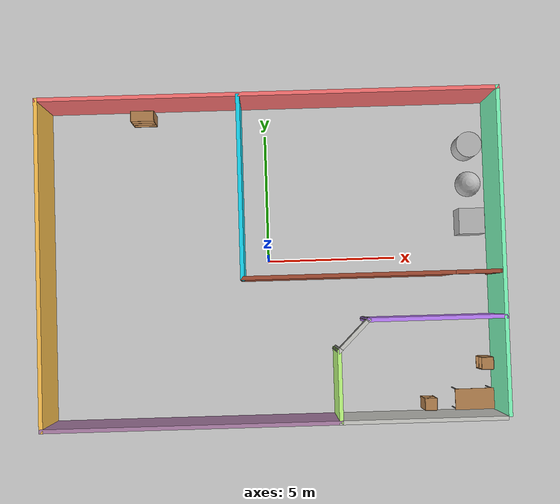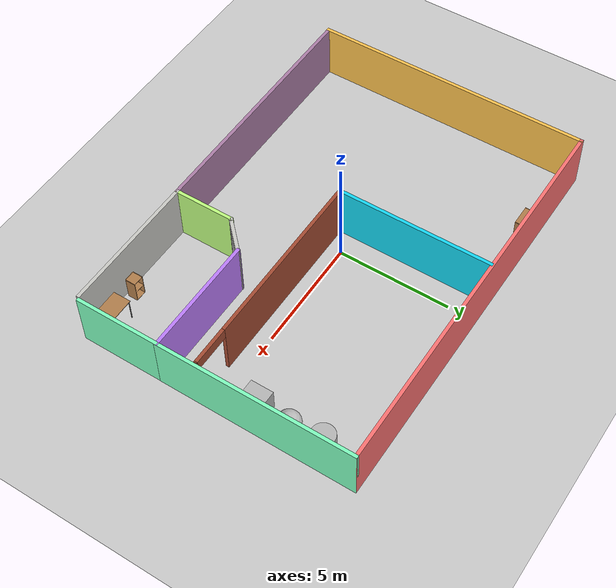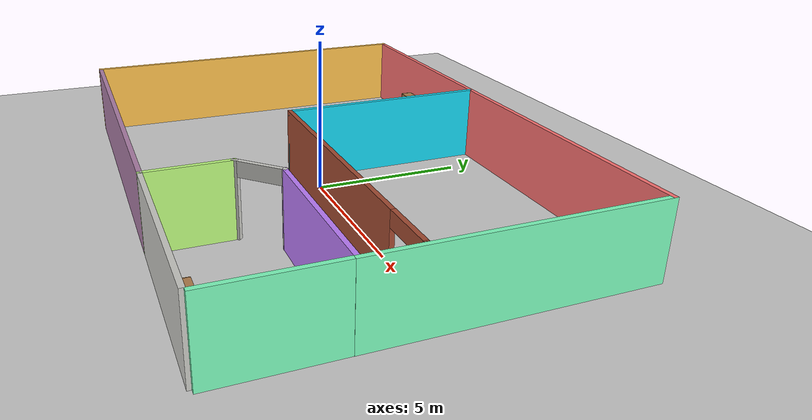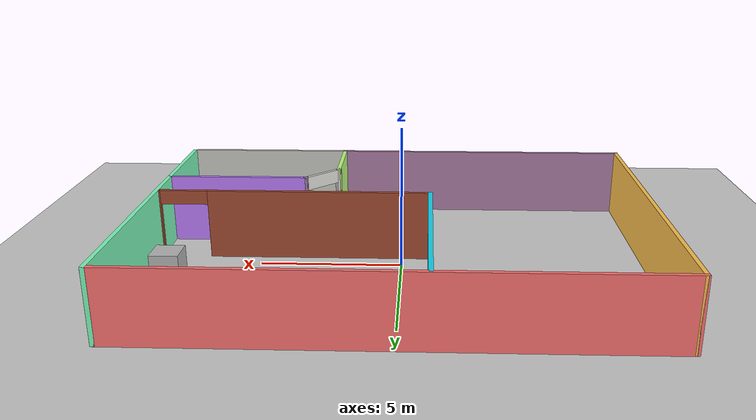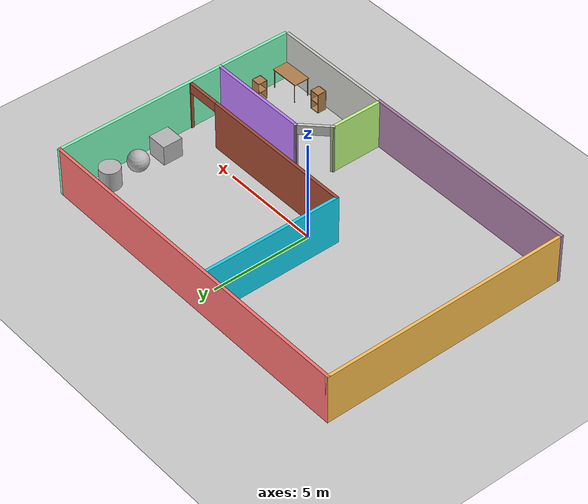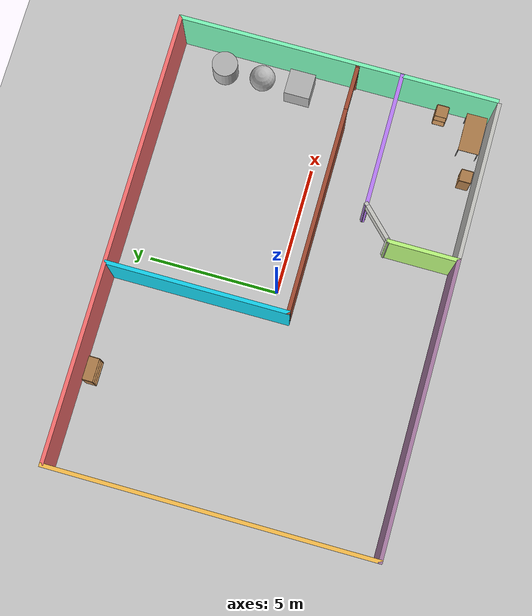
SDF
<sdf version="1.7">
 <world name="default">
  <light name="sun" type="directional">
   <pose>0 0 10 0 -0 0</pose>
   <diffuse>0.8 0.8 0.8 1</diffuse>
   <specular>0.2 0.2 0.2 1</specular>
   <attenuation>
    <range>1000</range>
    <constant>0.9</constant>
    <linear>0.01</linear>
    <quadratic>0.001</quadratic>
   </attenuation>
   <direction>-0.5 0.1 -0.9</direction>
   <spot><inner_angle>0</inner_angle><outer_angle>0</outer_angle><falloff>0</falloff></spot>
  </light>
  <model name="ground_plane">
   <static>1</static>
   <link name="link">
    <collision name="collision">
     <geometry><plane><normal>0 0 1</normal><size>100 100</size></plane></geometry>
     <surface><friction><ode><mu>100</mu><mu2>50</mu2></ode></friction></surface>
    </collision>
    <visual name="visual">
     <cast_shadows>0</cast_shadows>
     <geometry><plane><normal>0 0 1</normal><size>100 100</size></plane></geometry>
     <material>
      <script><uri>file://media/materials/scripts/gazebo.material</uri><name>Gazebo/Grey</name></script>
     </material>
    </visual>
   </link>
  </model>
  <gravity>0 0 -9.8</gravity>
  <magnetic_field>6e-06 2.3e-05 -4.2e-05</magnetic_field>
  <atmosphere type="adiabatic"/>
  <physics type="ode">
   <max_step_size>0.001</max_step_size>
   <real_time_factor>1</real_time_factor>
   <real_time_update_rate>1000</real_time_update_rate>
  </physics>
  <scene><ambient>0.4 0.4 0.4 1</ambient><background>0.7 0.7 0.7 1</background><shadows>1</shadows></scene>
  <spherical_coordinates>
   <surface_model>EARTH_WGS84</surface_model>
   <latitude_deg>0</latitude_deg>
   <longitude_deg>0</longitude_deg>
   <elevation>0</elevation>
   <heading_deg>0</heading_deg>
  </spherical_coordinates>
  <model name="FloorPlan1BHK">
   <pose>0.093457 0.03718 0 0 -0 0</pose>
   <link name="Wall_0">
    <collision name="Wall_0_Collision">
     <geometry><box><size>17.5 0.15 2.5</size></box></geometry>
     <pose>0 0 1.25 0 -0 0</pose>
    </collision>
    <visual name="Wall_0_Visual">
     <pose>0 0 1.25 0 -0 0</pose>
     <geometry><box><size>17.5 0.15 2.5</size></box></geometry>
     <material>
      <script><uri>file://media/materials/scripts/gazebo.material</uri><name>Gazebo/Grey</name></script>
      <ambient>1 0.45 0.45 1</ambient>
     </material>
     <meta><layer>0</layer></meta>
    </visual>
    <pose>0 6.17506 0 0 -0 0</pose>
   </link>
   <link name="Wall_10">
    <collision name="Wall_10_Collision">
     <geometry><box><size>2.77214 0.15 2.5</size></box></geometry>
     <pose>0 0 1.25 0 -0 0</pose>
    </collision>
    <visual name="Wall_10_Visual">
     <pose>0 0 1.25 0 -0 0</pose>
     <geometry><box><size>2.77214 0.15 2.5</size></box></geometry>
     <material>
      <script><uri>file://media/materials/scripts/gazebo.material</uri><name>Gazebo/Grey</name></script>
      <ambient>0.75 1 0.5 1</ambient>
     </material>
     <meta><layer>0</layer></meta>
    </visual>
    <pose>2.42713 -4.86387 0 0 -0 1.56917</pose>
   </link>
   <link name="Wall_11">
    <pose>2.99494 -2.98712 0 0 -0 0.785398</pose>
    <visual name="Wall_11_Visual_0">
     <pose>-0.778435 0 1.25 0 -0 0</pose>
     <geometry><box><size>0.19313 0.15 2.5</size></box></geometry>
     <material>
      <script><uri>file://media/materials/scripts/gazebo.material</uri><name>Gazebo/CeilingTiled</name></script>
      <ambient>1 1 1 1</ambient>
     </material>
     <meta><layer>0</layer></meta>
    </visual>
    <collision name="Wall_11_Collision_0">
     <geometry><box><size>0.19313 0.15 2.5</size></box></geometry>
     <pose>-0.778435 0 1.25 0 -0 0</pose>
    </collision>
    <visual name="Wall_11_Visual_1">
     <pose>0.80968 0 1.25 0 -0 0</pose>
     <geometry><box><size>0.13064 0.15 2.5</size></box></geometry>
     <material>
      <script><uri>file://media/materials/scripts/gazebo.material</uri><name>Gazebo/CeilingTiled</name></script>
      <ambient>1 1 1 1</ambient>
     </material>
     <meta><layer>0</layer></meta>
    </visual>
    <collision name="Wall_11_Collision_1">
     <geometry><box><size>0.13064 0.15 2.5</size></box></geometry>
     <pose>0.80968 0 1.25 0 -0 0</pose>
    </collision>
    <visual name="Wall_11_Visual_2">
     <pose>0.031245 0 2.25 0 -0 0</pose>
     <geometry><box><size>1.42623 0.15 0.5</size></box></geometry>
     <material>
      <script><uri>file://media/materials/scripts/gazebo.material</uri><name>Gazebo/CeilingTiled</name></script>
      <ambient>1 1 1 1</ambient>
     </material>
     <meta><layer>0</layer></meta>
    </visual>
    <collision name="Wall_11_Collision_2">
     <geometry><box><size>1.42623 0.15 0.5</size></box></geometry>
     <pose>0.031245 0 2.25 0 -0 0</pose>
    </collision>
   </link>
   <link name="Wall_12">
    <collision name="Wall_12_Collision">
     <geometry><box><size>5.25 0.15 2.5</size></box></geometry>
     <pose>0 0 1.25 0 -0 0</pose>
    </collision>
    <visual name="Wall_12_Visual">
     <pose>0 0 1.25 0 -0 0</pose>
     <geometry><box><size>5.25 0.15 2.5</size></box></geometry>
     <material>
      <script><uri>file://media/materials/scripts/gazebo.material</uri><name>Gazebo/Grey</name></script>
      <ambient>0.75 0.5 1 1</ambient>
     </material>
     <meta><layer>0</layer></meta>
    </visual>
    <pose>6.11062 -2.42143 0 0 -0 0</pose>
   </link>
   <link name="Wall_14">
    <collision name="Wall_14_Collision">
     <geometry><box><size>11.25 0.15 2.5</size></box></geometry>
     <pose>0 0 1.25 0 -0 0</pose>
    </collision>
    <visual name="Wall_14_Visual">
     <pose>0 0 1.25 0 -0 0</pose>
     <geometry><box><size>11.25 0.15 2.5</size></box></geometry>
     <material>
      <script><uri>file://media/materials/scripts/gazebo.material</uri><name>Gazebo/Grey</name></script>
      <ambient>0.678431 0.498039 0.658824 1</ambient>
     </material>
     <meta><layer>0</layer></meta>
    </visual>
    <pose>-3.125 -6.17494 0 0 -0 3.14159</pose>
   </link>
   <link name="Wall_16">
    <collision name="Wall_16_Collision">
     <geometry><box><size>8.75 0.15 2.5</size></box></geometry>
     <pose>0 0 1.25 0 -0 0</pose>
    </collision>
    <visual name="Wall_16_Visual">
     <pose>0 0 1.25 0 -0 0</pose>
     <geometry><box><size>8.75 0.15 2.5</size></box></geometry>
     <material>
      <script><uri>file://media/materials/scripts/gazebo.material</uri><name>Gazebo/Grey</name></script>
      <ambient>0.5 1 0.75 1</ambient>
     </material>
     <meta><layer>0</layer></meta>
    </visual>
    <pose>8.675 1.87506 0 0 -0 -1.5708</pose>
   </link>
   <link name="Wall_25">
    <collision name="Wall_25_Collision">
     <geometry><box><size>3.75 0.15 2.5</size></box></geometry>
     <pose>0 0 1.25 0 -0 0</pose>
    </collision>
    <visual name="Wall_25_Visual">
     <pose>0 0 1.25 0 -0 0</pose>
     <geometry><box><size>3.75 0.15 2.5</size></box></geometry>
     <material>
      <script><uri>file://media/materials/scripts/gazebo.material</uri><name>Gazebo/Grey</name></script>
      <ambient>0.5 1 0.75 1</ambient>
     </material>
     <meta><layer>0</layer></meta>
    </visual>
    <pose>8.66896 -4.25988 0 0 -0 1.5708</pose>
   </link>
   <link name="Wall_27">
    <collision name="Wall_27_Collision">
     <geometry><box><size>6.25 0.15 2.5</size></box></geometry>
     <pose>0 0 1.25 0 -0 0</pose>
    </collision>
    <visual name="Wall_27_Visual">
     <pose>0 0 1.25 0 -0 0</pose>
     <geometry><box><size>6.25 0.15 2.5</size></box></geometry>
     <material>
      <script><uri>file://media/materials/scripts/gazebo.material</uri><name>Gazebo/CeilingTiled</name></script>
      <ambient>1 1 1 1</ambient>
     </material>
     <meta><layer>0</layer></meta>
    </visual>
    <pose>5.475 -6.17494 0 0 -0 0</pose>
   </link>
   <link name="Wall_5">
    <collision name="Wall_5_Collision">
     <geometry><box><size>12.5 0.15 2.5</size></box></geometry>
     <pose>0 0 1.25 0 -0 0</pose>
    </collision>
    <visual name="Wall_5_Visual">
     <pose>0 0 1.25 0 -0 0</pose>
     <geometry><box><size>12.5 0.15 2.5</size></box></geometry>
     <material>
      <script><uri>file://media/materials/scripts/gazebo.material</uri><name>Gazebo/Grey</name></script>
      <ambient>1 0.764706 0.305882 1</ambient>
     </material>
     <meta><layer>0</layer></meta>
    </visual>
    <pose>-8.675 6e-05 0 0 -0 1.5708</pose>
   </link>
   <link name="Wall_7">
    <collision name="Wall_7_Collision">
     <geometry><box><size>7 0.15 2.5</size></box></geometry>
     <pose>0 0 1.25 0 -0 0</pose>
    </collision>
    <visual name="Wall_7_Visual">
     <pose>0 0 1.25 0 -0 0</pose>
     <geometry><box><size>7 0.15 2.5</size></box></geometry>
     <material>
      <script><uri>file://media/materials/scripts/gazebo.material</uri><name>Gazebo/Grey</name></script>
      <ambient>0.0823529 0.85098 0.956863 1</ambient>
     </material>
     <meta><layer>0</layer></meta>
    </visual>
    <pose>-1.08862 2.68888 0 0 -0 -1.5708</pose>
   </link>
   <link name="Wall_8">
    <pose>3.71138 -0.73612 0 0 -0 0</pose>
    <visual name="Wall_8_Visual_0">
     <pose>-0.867842 0 1.25 0 -0 0</pose>
     <geometry><box><size>8.01432 0.15 2.5</size></box></geometry>
     <material>
      <script><uri>file://media/materials/scripts/gazebo.material</uri><name>Gazebo/Bricks</name></script>
      <ambient>1 1 1 1</ambient>
     </material>
     <meta><layer>0</layer></meta>
    </visual>
    <collision name="Wall_8_Collision_0">
     <geometry><box><size>8.01432 0.15 2.5</size></box></geometry>
     <pose>-0.867842 0 1.25 0 -0 0</pose>
    </collision>
    <visual name="Wall_8_Visual_1">
     <pose>4.84937 0 1.25 0 -0 0</pose>
     <geometry><box><size>0.051255 0.15 2.5</size></box></geometry>
     <material>
      <script><uri>file://media/materials/scripts/gazebo.material</uri><name>Gazebo/Bricks</name></script>
      <ambient>1 1 1 1</ambient>
     </material>
     <meta><layer>0</layer></meta>
    </visual>
    <collision name="Wall_8_Collision_1">
     <geometry><box><size>0.051255 0.15 2.5</size></box></geometry>
     <pose>4.84937 0 1.25 0 -0 0</pose>
    </collision>
    <visual name="Wall_8_Visual_2">
     <pose>3.98153 0 2.25 0 -0 0</pose>
     <geometry><box><size>1.68443 0.15 0.5</size></box></geometry>
     <material>
      <script><uri>file://media/materials/scripts/gazebo.material</uri><name>Gazebo/Bricks</name></script>
      <ambient>1 1 1 1</ambient>
     </material>
     <meta><layer>0</layer></meta>
    </visual>
    <collision name="Wall_8_Collision_2">
     <geometry><box><size>1.68443 0.15 0.5</size></box></geometry>
     <pose>3.98153 0 2.25 0 -0 0</pose>
    </collision>
   </link>
   <static>1</static>
  </model>
  <model name="bookshelf">
   <static>1</static>
   <link name="link">
    <inertial><mass>1</mass></inertial>
    <collision name="back">
     <pose>0 0.005 0.6 0 -0 0</pose>
     <geometry><box><size>0.9 0.01 1.2</size></box></geometry>
    </collision>
    <visual name="visual1">
     <pose>0 0.005 0.6 0 -0 0</pose>
     <geometry><box><size>0.9 0.01 1.2</size></box></geometry>
     <material>
      <script><uri>file://media/materials/scripts/gazebo.material</uri><name>Gazebo/Wood</name></script>
     </material>
    </visual>
    <collision name="left_side">
     <pose>0.45 -0.195 0.6 0 -0 0</pose>
     <geometry><box><size>0.02 0.4 1.2</size></box></geometry>
    </collision>
    <visual name="visual2">
     <pose>0.45 -0.195 0.6 0 -0 0</pose>
     <geometry><box><size>0.02 0.4 1.2</size></box></geometry>
     <material>
      <script><uri>file://media/materials/scripts/gazebo.material</uri><name>Gazebo/Wood</name></script>
     </material>
    </visual>
    <collision name="right_side">
     <pose>-0.45 -0.195 0.6 0 -0 0</pose>
     <geometry><box><size>0.02 0.4 1.2</size></box></geometry>
    </collision>
    <visual name="visual3">
     <pose>-0.45 -0.195 0.6 0 -0 0</pose>
     <geometry><box><size>0.02 0.4 1.2</size></box></geometry>
     <material>
      <script><uri>file://media/materials/scripts/gazebo.material</uri><name>Gazebo/Wood</name></script>
     </material>
    </visual>
    <collision name="bottom">
     <pose>0 -0.195 0.03 0 -0 0</pose>
     <geometry><box><size>0.88 0.4 0.06</size></box></geometry>
    </collision>
    <visual name="visual4">
     <pose>0 -0.195 0.03 0 -0 0</pose>
     <geometry><box><size>0.88 0.4 0.06</size></box></geometry>
     <material>
      <script><uri>file://media/materials/scripts/gazebo.material</uri><name>Gazebo/Wood</name></script>
     </material>
    </visual>
    <collision name="top">
     <pose>0 -0.195 1.19 0 -0 0</pose>
     <geometry><box><size>0.88 0.4 0.02</size></box></geometry>
    </collision>
    <visual name="visual5">
     <pose>0 -0.195 1.19 0 -0 0</pose>
     <geometry><box><size>0.88 0.4 0.02</size></box></geometry>
     <material>
      <script><uri>file://media/materials/scripts/gazebo.material</uri><name>Gazebo/Wood</name></script>
     </material>
    </visual>
    <collision name="low_shelf">
     <pose>0 -0.195 0.43 0 -0 0</pose>
     <geometry><box><size>0.88 0.4 0.02</size></box></geometry>
    </collision>
    <visual name="visual6">
     <pose>0 -0.195 0.43 0 -0 0</pose>
     <geometry><box><size>0.88 0.4 0.02</size></box></geometry>
     <material>
      <script><uri>file://media/materials/scripts/gazebo.material</uri><name>Gazebo/Wood</name></script>
     </material>
    </visual>
    <collision name="high_shelf">
     <pose>0 -0.195 0.8 0 -0 0</pose>
     <geometry><box><size>0.88 0.4 0.02</size></box></geometry>
    </collision>
    <visual name="visual7">
     <pose>0 -0.195 0.8 0 -0 0</pose>
     <geometry><box><size>0.88 0.4 0.02</size></box></geometry>
     <material>
      <script><uri>file://media/materials/scripts/gazebo.material</uri><name>Gazebo/Wood</name></script>
     </material>
    </visual>
   </link>
   <pose>-4.76074 5.95163 0 0 0 -0.000339</pose>
  </model>
  <model name="cabinet">
   <static>1</static>
   <link name="cabinet_bottom_plate">
    <inertial>
     <pose>0 0 -1 0 -0 0</pose>
     <inertia><ixx>2.05</ixx><ixy>0</ixy><ixz>0</ixz><iyy>2.05</iyy><iyz>0</iyz><izz>2.05</izz></inertia>
     <mass>25</mass>
    </inertial>
    <collision name="cabinet_bottom_plate_geom">
     <pose>0 0 0.01 0 -0 0</pose>
     <geometry><box><size>0.45 0.45 0.02</size></box></geometry>
    </collision>
    <visual name="cabinet_bottom_plate_geom_visual">
     <pose>0 0 0.01 0 -0 0</pose>
     <geometry><box><size>0.45 0.45 0.02</size></box></geometry>
     <material>
      <script><uri>file://media/materials/scripts/gazebo.material</uri><name>Gazebo/Wood</name></script>
     </material>
    </visual>
    <collision name="cabinet_bottom_plate_geom_cabinet_back_plate">
     <pose>0.235 0 0.51 0 -0 0</pose>
     <geometry><box><size>0.02 0.45 1.02</size></box></geometry>
    </collision>
    <visual name="cabinet_bottom_plate_geom_cabinet_back_plate_visual">
     <pose>0.235 0 0.51 0 -0 0</pose>
     <geometry><box><size>0.02 0.45 1.02</size></box></geometry>
     <material>
      <script><uri>file://media/materials/scripts/gazebo.material</uri><name>Gazebo/Wood</name></script>
     </material>
    </visual>
    <collision name="cabinet_bottom_plate_geom_cabinet_left_plate">
     <pose>0 0.235 0.51 0 -0 0</pose>
     <geometry><box><size>0.45 0.02 1.02</size></box></geometry>
    </collision>
    <visual name="cabinet_bottom_plate_geom_cabinet_left_plate_visual">
     <pose>0 0.235 0.51 0 -0 0</pose>
     <geometry><box><size>0.45 0.02 1.02</size></box></geometry>
     <material>
      <script><uri>file://media/materials/scripts/gazebo.material</uri><name>Gazebo/Wood</name></script>
     </material>
    </visual>
    <collision name="cabinet_bottom_plate_geom_cabinet_middle_plate">
     <pose>0 0 0.51 0 -0 0</pose>
     <geometry><box><size>0.45 0.45 0.02</size></box></geometry>
    </collision>
    <visual name="cabinet_bottom_plate_geom_cabinet_middle_plate_visual">
     <pose>0 0 0.51 0 -0 0</pose>
     <geometry><box><size>0.45 0.45 0.02</size></box></geometry>
     <material>
      <script><uri>file://media/materials/scripts/gazebo.material</uri><name>Gazebo/Wood</name></script>
     </material>
    </visual>
    <collision name="cabinet_bottom_plate_geom_cabinet_right_plate">
     <pose>0 -0.235 0.51 0 -0 0</pose>
     <geometry><box><size>0.45 0.02 1.02</size></box></geometry>
    </collision>
    <visual name="cabinet_bottom_plate_geom_cabinet_right_plate_visual">
     <pose>0 -0.235 0.51 0 -0 0</pose>
     <geometry><box><size>0.45 0.02 1.02</size></box></geometry>
     <material>
      <script><uri>file://media/materials/scripts/gazebo.material</uri><name>Gazebo/Wood</name></script>
     </material>
    </visual>
    <collision name="cabinet_bottom_plate_geom_cabinet_top_plate">
     <pose>0 0 1.01 0 -0 0</pose>
     <geometry><box><size>0.45 0.45 0.02</size></box></geometry>
    </collision>
    <visual name="cabinet_bottom_plate_geom_cabinet_top_plate_visual">
     <pose>0 0 1.01 0 -0 0</pose>
     <geometry><box><size>0.45 0.45 0.02</size></box></geometry>
     <material>
      <script><uri>file://media/materials/scripts/gazebo.material</uri><name>Gazebo/Wood</name></script>
     </material>
    </visual>
   </link>
   <pose>8.33694 -4.21954 0 0 -0 0</pose>
  </model>
  <model name="table">
   <static>1</static>
   <link name="link">
    <collision name="surface">
     <pose>0 0 1 0 -0 0</pose>
     <geometry><box><size>1.5 0.8 0.03</size></box></geometry>
     <surface><friction><ode><mu>0.6</mu><mu2>0.6</mu2></ode></friction></surface>
    </collision>
    <visual name="visual1">
     <pose>0 0 1 0 -0 0</pose>
     <geometry><box><size>1.5 0.8 0.03</size></box></geometry>
     <material>
      <script><uri>file://media/materials/scripts/gazebo.material</uri><name>Gazebo/Wood</name></script>
     </material>
    </visual>
    <collision name="front_left_leg">
     <pose>0.68 0.38 0.5 0 -0 0</pose>
     <geometry><cylinder><radius>0.02</radius><length>1</length></cylinder></geometry>
    </collision>
    <visual name="front_left_leg">
     <pose>0.68 0.38 0.5 0 -0 0</pose>
     <geometry><cylinder><radius>0.02</radius><length>1</length></cylinder></geometry>
     <material>
      <script><uri>file://media/materials/scripts/gazebo.material</uri><name>Gazebo/Grey</name></script>
     </material>
    </visual>
    <collision name="front_right_leg">
     <pose>0.68 -0.38 0.5 0 -0 0</pose>
     <geometry><cylinder><radius>0.02</radius><length>1</length></cylinder></geometry>
    </collision>
    <visual name="front_right_leg">
     <pose>0.68 -0.38 0.5 0 -0 0</pose>
     <geometry><cylinder><radius>0.02</radius><length>1</length></cylinder></geometry>
     <material>
      <script><uri>file://media/materials/scripts/gazebo.material</uri><name>Gazebo/Grey</name></script>
     </material>
    </visual>
    <collision name="back_right_leg">
     <pose>-0.68 -0.38 0.5 0 -0 0</pose>
     <geometry><cylinder><radius>0.02</radius><length>1</length></cylinder></geometry>
    </collision>
    <visual name="back_right_leg">
     <pose>-0.68 -0.38 0.5 0 -0 0</pose>
     <geometry><cylinder><radius>0.02</radius><length>1</length></cylinder></geometry>
     <material>
      <script><uri>file://media/materials/scripts/gazebo.material</uri><name>Gazebo/Grey</name></script>
     </material>
    </visual>
    <collision name="back_left_leg">
     <pose>-0.68 0.38 0.5 0 -0 0</pose>
     <geometry><cylinder><radius>0.02</radius><length>1</length></cylinder></geometry>
    </collision>
    <visual name="back_left_leg">
     <pose>-0.68 0.38 0.5 0 -0 0</pose>
     <geometry><cylinder><radius>0.02</radius><length>1</length></cylinder></geometry>
     <material>
      <script><uri>file://media/materials/scripts/gazebo.material</uri><name>Gazebo/Grey</name></script>
     </material>
    </visual>
   </link>
   <pose>7.78712 -5.56762 0 0 -0 0.006304</pose>
  </model>
  <model name="cabinet_0">
   <static>1</static>
   <link name="cabinet_bottom_plate">
    <inertial>
     <pose>0 0 -1 0 -0 0</pose>
     <inertia><ixx>2.05</ixx><ixy>0</ixy><ixz>0</ixz><iyy>2.05</iyy><iyz>0</iyz><izz>2.05</izz></inertia>
     <mass>25</mass>
    </inertial>
    <collision name="cabinet_bottom_plate_geom">
     <pose>0 0 0.01 0 -0 0</pose>
     <geometry><box><size>0.45 0.45 0.02</size></box></geometry>
    </collision>
    <visual name="cabinet_bottom_plate_geom_visual">
     <pose>0 0 0.01 0 -0 0</pose>
     <geometry><box><size>0.45 0.45 0.02</size></box></geometry>
     <material>
      <script><uri>file://media/materials/scripts/gazebo.material</uri><name>Gazebo/Wood</name></script>
     </material>
    </visual>
    <collision name="cabinet_bottom_plate_geom_cabinet_back_plate">
     <pose>0.235 0 0.51 0 -0 0</pose>
     <geometry><box><size>0.02 0.45 1.02</size></box></geometry>
    </collision>
    <visual name="cabinet_bottom_plate_geom_cabinet_back_plate_visual">
     <pose>0.235 0 0.51 0 -0 0</pose>
     <geometry><box><size>0.02 0.45 1.02</size></box></geometry>
     <material>
      <script><uri>file://media/materials/scripts/gazebo.material</uri><name>Gazebo/Wood</name></script>
     </material>
    </visual>
    <collision name="cabinet_bottom_plate_geom_cabinet_left_plate">
     <pose>0 0.235 0.51 0 -0 0</pose>
     <geometry><box><size>0.45 0.02 1.02</size></box></geometry>
    </collision>
    <visual name="cabinet_bottom_plate_geom_cabinet_left_plate_visual">
     <pose>0 0.235 0.51 0 -0 0</pose>
     <geometry><box><size>0.45 0.02 1.02</size></box></geometry>
     <material>
      <script><uri>file://media/materials/scripts/gazebo.material</uri><name>Gazebo/Wood</name></script>
     </material>
    </visual>
    <collision name="cabinet_bottom_plate_geom_cabinet_middle_plate">
     <pose>0 0 0.51 0 -0 0</pose>
     <geometry><box><size>0.45 0.45 0.02</size></box></geometry>
    </collision>
    <visual name="cabinet_bottom_plate_geom_cabinet_middle_plate_visual">
     <pose>0 0 0.51 0 -0 0</pose>
     <geometry><box><size>0.45 0.45 0.02</size></box></geometry>
     <material>
      <script><uri>file://media/materials/scripts/gazebo.material</uri><name>Gazebo/Wood</name></script>
     </material>
    </visual>
    <collision name="cabinet_bottom_plate_geom_cabinet_right_plate">
     <pose>0 -0.235 0.51 0 -0 0</pose>
     <geometry><box><size>0.45 0.02 1.02</size></box></geometry>
    </collision>
    <visual name="cabinet_bottom_plate_geom_cabinet_right_plate_visual">
     <pose>0 -0.235 0.51 0 -0 0</pose>
     <geometry><box><size>0.45 0.02 1.02</size></box></geometry>
     <material>
      <script><uri>file://media/materials/scripts/gazebo.material</uri><name>Gazebo/Wood</name></script>
     </material>
    </visual>
    <collision name="cabinet_bottom_plate_geom_cabinet_top_plate">
     <pose>0 0 1.01 0 -0 0</pose>
     <geometry><box><size>0.45 0.45 0.02</size></box></geometry>
    </collision>
    <visual name="cabinet_bottom_plate_geom_cabinet_top_plate_visual">
     <pose>0 0 1.01 0 -0 0</pose>
     <geometry><box><size>0.45 0.45 0.02</size></box></geometry>
     <material>
      <script><uri>file://media/materials/scripts/gazebo.material</uri><name>Gazebo/Wood</name></script>
     </material>
    </visual>
   </link>
   <pose>6.10203 -5.72614 0 0 0 -1.57276</pose>
  </model>
  <model name="textured_shapes">
   <pose>7.94749 2.81336 0.5 0 -0 0</pose>
   <link name="box">
    <pose>0 -1.5 0 0 -0 0</pose>
    <collision name="collision"><geometry><box><size>1 1 1</size></box></geometry></collision>
    <visual name="visual">
     <geometry><box><size>1 1 1</size></box></geometry>
     <material>
      <script>
       <uri>https://fuel.ignitionrobotics.org/1.0/openrobotics/models/textured shapes/2/files/materials/scripts</uri>
       <uri>https://fuel.ignitionrobotics.org/1.0/openrobotics/models/textured shapes/2/files/materials/textures</uri>
       <name>TexturedShape/Squares</name>
      </script>
     </material>
    </visual>
    <inertial>
     <inertia><ixx>1</ixx><ixy>0</ixy><ixz>0</ixz><iyy>1</iyy><iyz>0</iyz><izz>1</izz></inertia>
     <mass>1</mass>
    </inertial>
   </link>
   <link name="sphere">
    <collision name="collision"><geometry><sphere><radius>0.5</radius></sphere></geometry></collision>
    <visual name="visual">
     <geometry><sphere><radius>0.5</radius></sphere></geometry>
     <material>
      <script>
       <uri>https://fuel.ignitionrobotics.org/1.0/openrobotics/models/textured shapes/2/files/materials/scripts</uri>
       <uri>https://fuel.ignitionrobotics.org/1.0/openrobotics/models/textured shapes/2/files/materials/textures</uri>
       <name>TexturedShape/Squares</name>
      </script>
     </material>
    </visual>
    <inertial>
     <inertia><ixx>1</ixx><ixy>0</ixy><ixz>0</ixz><iyy>1</iyy><iyz>0</iyz><izz>1</izz></inertia>
     <mass>1</mass>
    </inertial>
   </link>
   <link name="cylinder">
    <pose>0 1.5 0 0 -0 0</pose>
    <collision name="collision">
     <geometry><cylinder><radius>0.5</radius><length>1</length></cylinder></geometry>
    </collision>
    <visual name="visual">
     <geometry><cylinder><radius>0.5</radius><length>1</length></cylinder></geometry>
     <material>
      <script>
       <uri>https://fuel.ignitionrobotics.org/1.0/openrobotics/models/textured shapes/2/files/materials/scripts</uri>
       <uri>https://fuel.ignitionrobotics.org/1.0/openrobotics/models/textured shapes/2/files/materials/textures</uri>
       <name>TexturedShape/Squares</name>
      </script>
     </material>
    </visual>
    <inertial>
     <inertia><ixx>1</ixx><ixy>0</ixy><ixz>0</ixz><iyy>1</iyy><iyz>0</iyz><izz>1</izz></inertia>
     <mass>1</mass>
    </inertial>
   </link>
  </model>
 </world>
</sdf>
